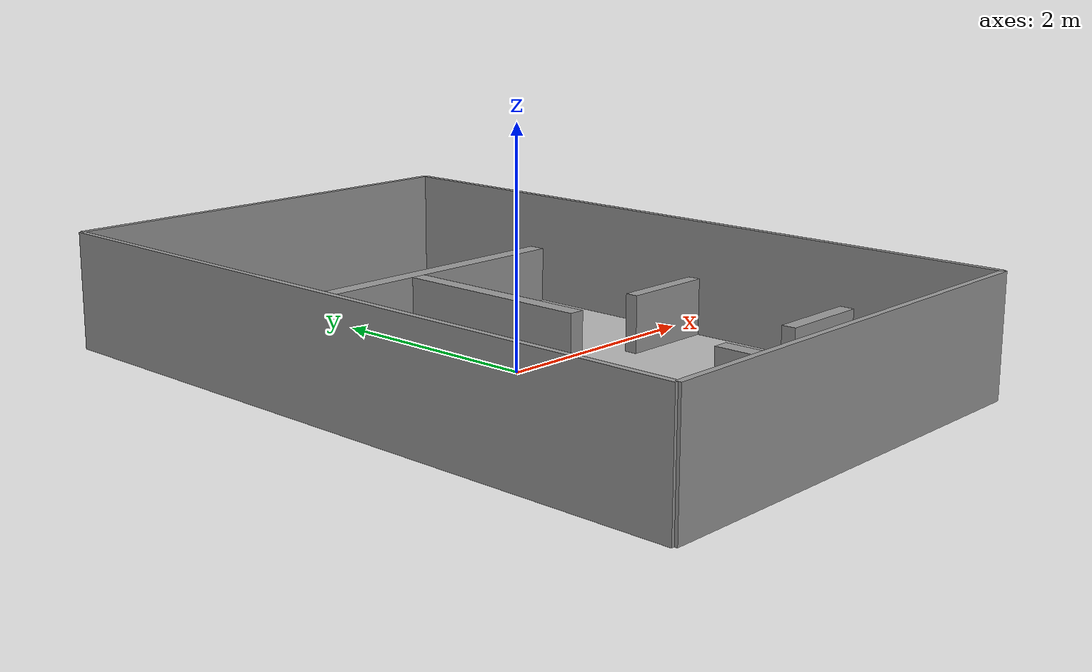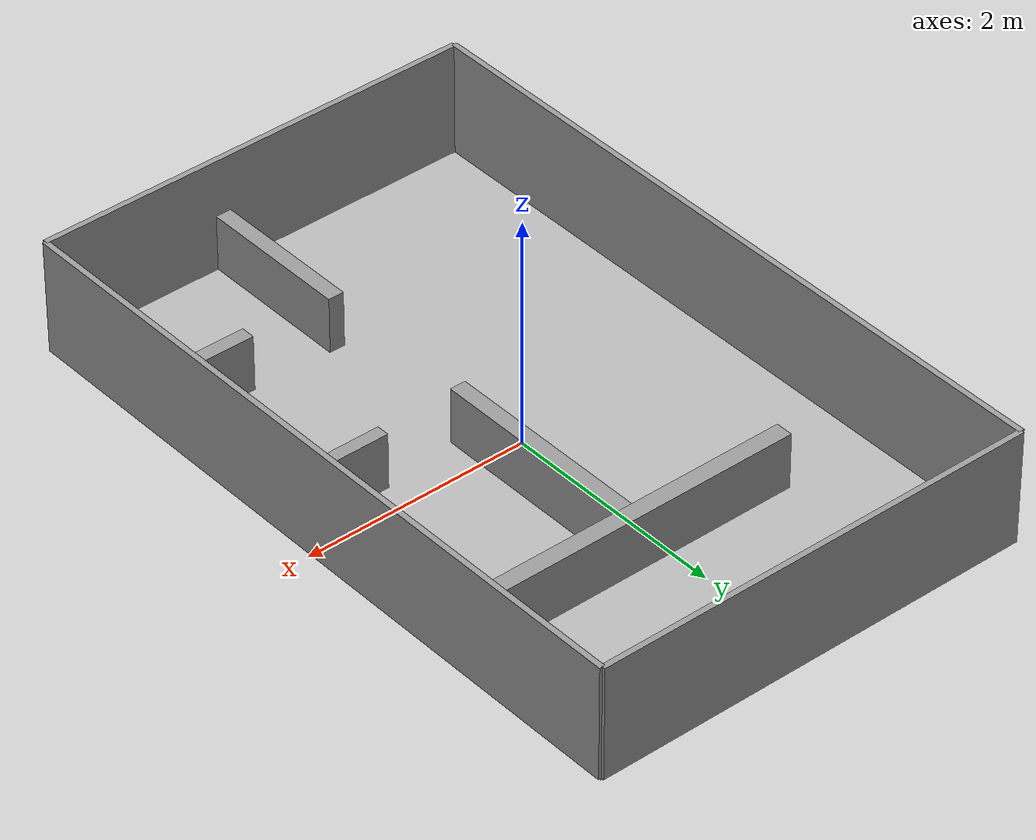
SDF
<sdf version="1.7">
 <world name="construct_world">
  <light name="sun" type="directional">
   <pose>0 0 10 0 -0 0</pose>
   <diffuse>0.8 0.8 0.8 1</diffuse>
   <specular>0.2 0.2 0.2 1</specular>
   <attenuation>
    <range>1000</range>
    <constant>0.9</constant>
    <linear>0.01</linear>
    <quadratic>0.001</quadratic>
   </attenuation>
   <direction>-0.5 0.1 -0.9</direction>
   <spot><inner_angle>0</inner_angle><outer_angle>0</outer_angle><falloff>0</falloff></spot>
  </light>
  <model name="ground_plane">
   <static>1</static>
   <link name="link">
    <collision name="collision">
     <geometry><plane><normal>0 0 1</normal><size>100 100</size></plane></geometry>
     <surface>
      <contact><collide_bitmask>65535</collide_bitmask></contact>
      <friction><ode><mu>100</mu><mu2>50</mu2></ode></friction>
     </surface>
    </collision>
    <visual name="visual">
     <cast_shadows>0</cast_shadows>
     <geometry><box><size>3.9000000000000004 6.237500000000001 .01</size></box></geometry>
     <material>
      <script>
       <uri>/home/dongyanqi/catkin_ws/src/simulator_gazebo/materials/scripts/construct_region_map.material</uri>
       <name>GroundPlane/Image/construct</name>
      </script>
     </material>
    </visual>
   </link>
  </model>
  <gravity>0 0 -9.8</gravity>
  <magnetic_field>6e-06 2.3e-05 -4.2e-05</magnetic_field>
  <atmosphere type="adiabatic"/>
  <physics type="ode">
   <max_step_size>0.001</max_step_size>
   <real_time_factor>1</real_time_factor>
   <real_time_update_rate>1000</real_time_update_rate>
  </physics>
  <scene><ambient>0.4 0.4 0.4 1</ambient><background>0.7 0.7 0.7 1</background><shadows>1</shadows></scene>
  <spherical_coordinates>
   <surface_model>EARTH_WGS84</surface_model>
   <latitude_deg>0</latitude_deg>
   <longitude_deg>0</longitude_deg>
   <elevation>0</elevation>
   <heading_deg>0</heading_deg>
  </spherical_coordinates>
  <model name="Box_0">
   <pose>0.32337419495955094 0.5712702402804433 0 0 -0 0</pose>
   <link name="Box_0_link">
    <collision name="Box_0_Collision">
     <pose>0 0 0.25 0 -0 0</pose>
     <geometry><box><size>0.13935773008294783 1.8317439595790024 0.5</size></box></geometry>
    </collision>
    <visual name="Box_0_Visual">
     <pose>0 0 0.25 0 -0 0</pose>
     <geometry><box><size>0.13935773008294783 1.8317439595790024 0.5</size></box></geometry>
     <material>
      <script><uri>file://media/materials/scripts/gazebo.material</uri><name>Gazebo/Grey</name></script>
      <ambient>1 1 1 1</ambient>
     </material>
     <meta><layer>0</layer></meta>
    </visual>
    <inertial>
     <inertia><ixx>1</ixx><ixy>0</ixy><ixz>0</ixz><iyy>1</iyy><iyz>0</iyz><izz>1</izz></inertia>
     <mass>1</mass>
    </inertial>
   </link>
  </model>
  <model name="Box_1">
   <pose>0.3973358307303166 1.561907479285084 0 0 -0 0</pose>
   <link name="Box_1_link">
    <collision name="Box_1_Collision">
     <pose>0 0 0.25 0 -0 0</pose>
     <geometry><box><size>3.061963746438364 0.15048527909472398 0.5</size></box></geometry>
    </collision>
    <visual name="Box_1_Visual">
     <pose>0 0 0.25 0 -0 0</pose>
     <geometry><box><size>3.061963746438364 0.15048527909472398 0.5</size></box></geometry>
     <material>
      <script><uri>file://media/materials/scripts/gazebo.material</uri><name>Gazebo/Grey</name></script>
      <ambient>1 1 1 1</ambient>
     </material>
     <meta><layer>0</layer></meta>
    </visual>
    <inertial>
     <inertia><ixx>1</ixx><ixy>0</ixy><ixz>0</ixz><iyy>1</iyy><iyz>0</iyz><izz>1</izz></inertia>
     <mass>1</mass>
    </inertial>
   </link>
  </model>
  <model name="Box_2">
   <pose>1.5130669624542263 -1.8145534415325868 0 0 -0 0</pose>
   <link name="Box_2_link">
    <collision name="Box_2_Collision">
     <pose>0 0 0.25 0 -0 0</pose>
     <geometry><box><size>0.8374396719973176 0.12486767245131425 0.5</size></box></geometry>
    </collision>
    <visual name="Box_2_Visual">
     <pose>0 0 0.25 0 -0 0</pose>
     <geometry><box><size>0.8374396719973176 0.12486767245131425 0.5</size></box></geometry>
     <material>
      <script><uri>file://media/materials/scripts/gazebo.material</uri><name>Gazebo/Grey</name></script>
      <ambient>1 1 1 1</ambient>
     </material>
     <meta><layer>0</layer></meta>
    </visual>
    <inertial>
     <inertia><ixx>1</ixx><ixy>0</ixy><ixz>0</ixz><iyy>1</iyy><iyz>0</iyz><izz>1</izz></inertia>
     <mass>1</mass>
    </inertial>
   </link>
  </model>
  <model name="Box_3">
   <pose>0.32646425876719787 -2.425492144482499 0 0 -0 0</pose>
   <link name="Box_3_link">
    <collision name="Box_3_Collision">
     <pose>0 0 0.25 0 -0 0</pose>
     <geometry><box><size>0.13888233565100228 1.3707035926923963 0.5</size></box></geometry>
    </collision>
    <visual name="Box_3_Visual">
     <pose>0 0 0.25 0 -0 0</pose>
     <geometry><box><size>0.13888233565100228 1.3707035926923963 0.5</size></box></geometry>
     <material>
      <script><uri>file://media/materials/scripts/gazebo.material</uri><name>Gazebo/Grey</name></script>
      <ambient>1 1 1 1</ambient>
     </material>
     <meta><layer>0</layer></meta>
    </visual>
    <inertial>
     <inertia><ixx>1</ixx><ixy>0</ixy><ixz>0</ixz><iyy>1</iyy><iyz>0</iyz><izz>1</izz></inertia>
     <mass>1</mass>
    </inertial>
   </link>
  </model>
  <model name="Box_4">
   <pose>1.4989958395337848 -0.2881399235777728 0 0 -0 0</pose>
   <link name="Box_4_link">
    <collision name="Box_4_Collision">
     <pose>0 0 0.25 0 -0 0</pose>
     <geometry><box><size>0.8624211872906711 0.11241494790200601 0.5</size></box></geometry>
    </collision>
    <visual name="Box_4_Visual">
     <pose>0 0 0.25 0 -0 0</pose>
     <geometry><box><size>0.8624211872906711 0.11241494790200601 0.5</size></box></geometry>
     <material>
      <script><uri>file://media/materials/scripts/gazebo.material</uri><name>Gazebo/Grey</name></script>
      <ambient>1 1 1 1</ambient>
     </material>
     <meta><layer>0</layer></meta>
    </visual>
    <inertial>
     <inertia><ixx>1</ixx><ixy>0</ixy><ixz>0</ixz><iyy>1</iyy><iyz>0</iyz><izz>1</izz></inertia>
     <mass>1</mass>
    </inertial>
   </link>
  </model>
  <model name="Boundary_0">
   <pose>-0.008899671870746029 -3.111536533605773 0 0 -0 0</pose>
   <link name="Boundary_0_link">
    <collision name="Boundary_0_Collision">
     <pose>0 0 0.5 0 -0 0</pose>
     <geometry><box><size>3.899120751476146 0.05 1</size></box></geometry>
    </collision>
    <visual name="Boundary_0_Visual">
     <pose>0 0 0.5 0 -0 0</pose>
     <geometry><box><size>3.899120751476146 0.05 1</size></box></geometry>
     <material>
      <script><uri>file://media/materials/scripts/gazebo.material</uri><name>Gazebo/Grey</name></script>
      <ambient>1 1 1 1</ambient>
     </material>
     <meta><layer>0</layer></meta>
    </visual>
    <inertial>
     <inertia><ixx>1</ixx><ixy>0</ixy><ixz>0</ixz><iyy>1</iyy><iyz>0</iyz><izz>1</izz></inertia>
     <mass>1</mass>
    </inertial>
   </link>
  </model>
  <model name="Boundary_1">
   <pose>1.9406607038673271 -0.0020187739826007522 0 0 -0 0</pose>
   <link name="Boundary_1_link">
    <collision name="Boundary_1_Collision">
     <pose>0 0 0.5 0 -0 0</pose>
     <geometry><box><size>0.05 6.2190355192463445 1</size></box></geometry>
    </collision>
    <visual name="Boundary_1_Visual">
     <pose>0 0 0.5 0 -0 0</pose>
     <geometry><box><size>0.05 6.2190355192463445 1</size></box></geometry>
     <material>
      <script><uri>file://media/materials/scripts/gazebo.material</uri><name>Gazebo/Grey</name></script>
      <ambient>1 1 1 1</ambient>
     </material>
     <meta><layer>0</layer></meta>
    </visual>
    <inertial>
     <inertia><ixx>1</ixx><ixy>0</ixy><ixz>0</ixz><iyy>1</iyy><iyz>0</iyz><izz>1</izz></inertia>
     <mass>1</mass>
    </inertial>
   </link>
  </model>
  <model name="Boundary_2">
   <pose>-0.008899671870746029 3.1074989856405715 0 0 -0 0</pose>
   <link name="Boundary_2_link">
    <collision name="Boundary_2_Collision">
     <pose>0 0 0.5 0 -0 0</pose>
     <geometry><box><size>3.899120751476146 0.05 1</size></box></geometry>
    </collision>
    <visual name="Boundary_2_Visual">
     <pose>0 0 0.5 0 -0 0</pose>
     <geometry><box><size>3.899120751476146 0.05 1</size></box></geometry>
     <material>
      <script><uri>file://media/materials/scripts/gazebo.material</uri><name>Gazebo/Grey</name></script>
      <ambient>1 1 1 1</ambient>
     </material>
     <meta><layer>0</layer></meta>
    </visual>
    <inertial>
     <inertia><ixx>1</ixx><ixy>0</ixy><ixz>0</ixz><iyy>1</iyy><iyz>0</iyz><izz>1</izz></inertia>
     <mass>1</mass>
    </inertial>
   </link>
  </model>
  <model name="Boundary_3">
   <pose>-1.9584600476088192 -0.0020187739826007522 0 0 -0 0</pose>
   <link name="Boundary_3_link">
    <collision name="Boundary_3_Collision">
     <pose>0 0 0.5 0 -0 0</pose>
     <geometry><box><size>0.05 6.2190355192463445 1</size></box></geometry>
    </collision>
    <visual name="Boundary_3_Visual">
     <pose>0 0 0.5 0 -0 0</pose>
     <geometry><box><size>0.05 6.2190355192463445 1</size></box></geometry>
     <material>
      <script><uri>file://media/materials/scripts/gazebo.material</uri><name>Gazebo/Grey</name></script>
      <ambient>1 1 1 1</ambient>
     </material>
     <meta><layer>0</layer></meta>
    </visual>
    <inertial>
     <inertia><ixx>1</ixx><ixy>0</ixy><ixz>0</ixz><iyy>1</iyy><iyz>0</iyz><izz>1</izz></inertia>
     <mass>1</mass>
    </inertial>
   </link>
  </model>
 </world>
</sdf>
